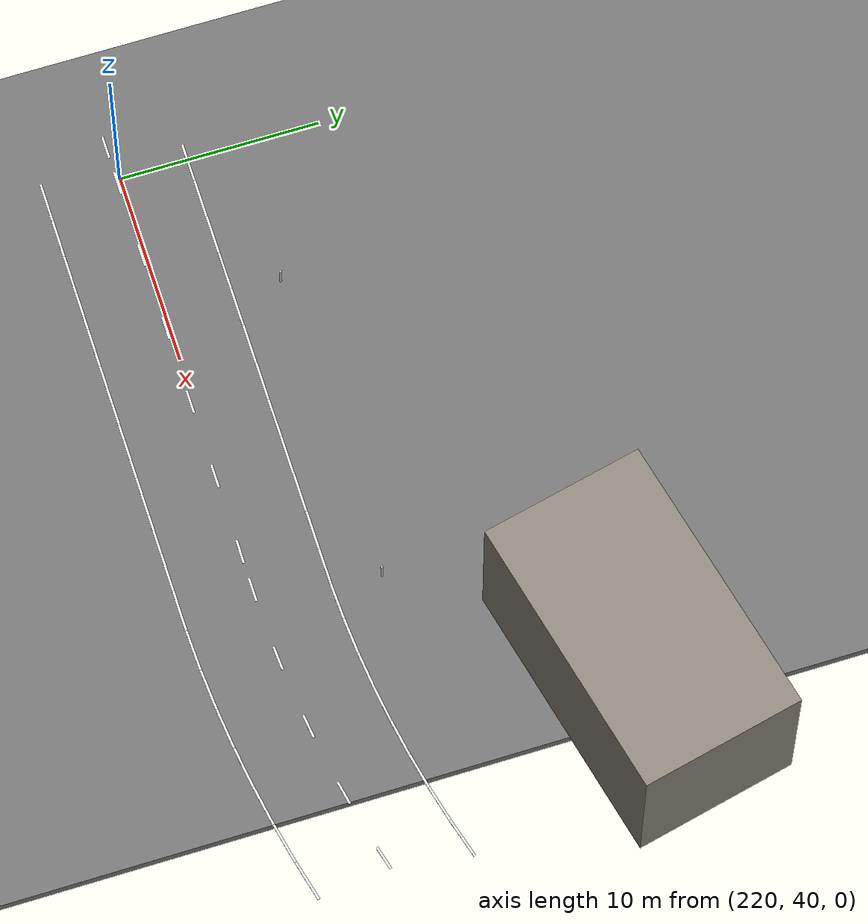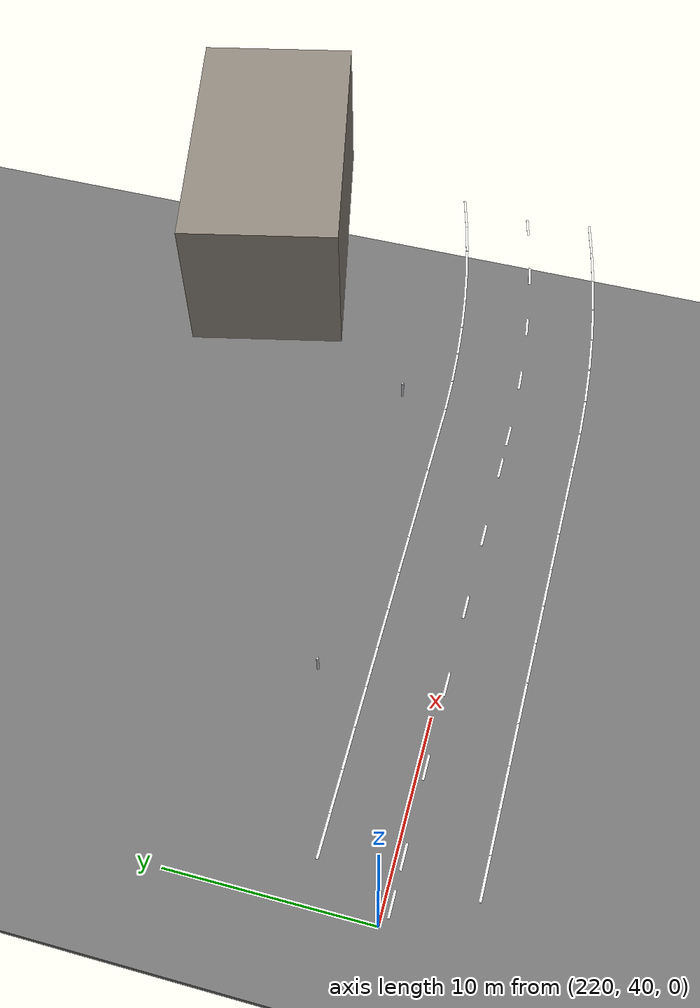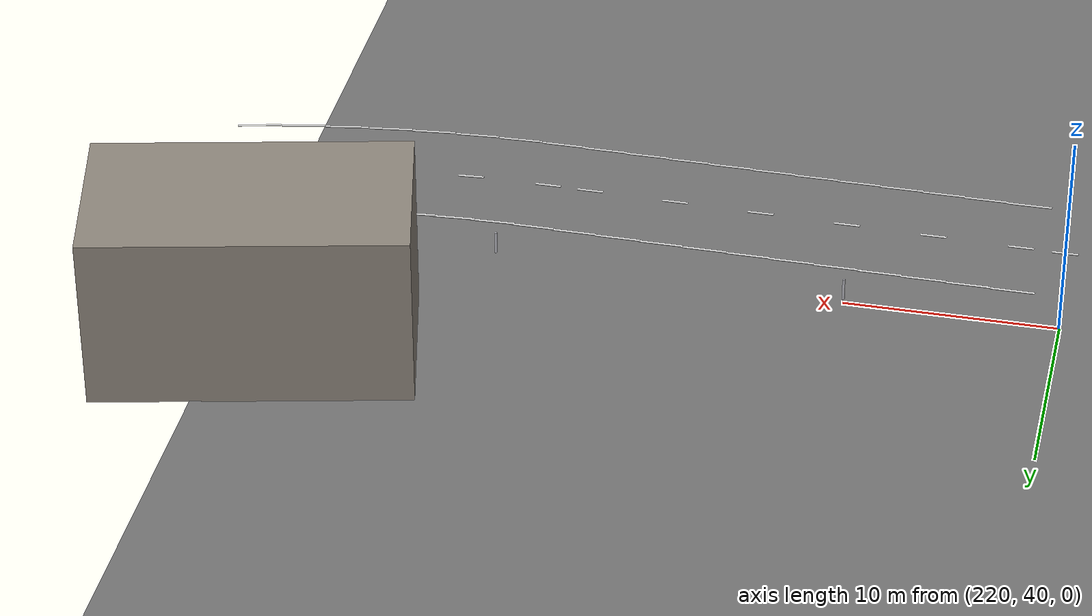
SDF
<sdf version="1.4">
 <world name="marathon_course">
  <include><uri>model://sun</uri></include>
  <model name="road_6">
   <static>true</static>
   <pose>235.20436310160932 37.70038853386919 3.8554693473276775 0 -0.017453292519943295 0</pose>
   <link name="link">
    <collision name="collision">
     <geometry><box><size>40.4 125.40077706773837 0.5</size></box></geometry>
    </collision>
    <visual name="visual">
     <geometry><box><size>40.4 125.40077706773837 0.5</size></box></geometry>
     <material><ambient>0.45 0.45 0.45 1</ambient><diffuse>0.45 0.45 0.45 1</diffuse></material>
    </visual>
   </link>
  </model>
  <model name="paint_left_edge_114">
   <static>true</static>
   <pose>222.05546315108728 42.95038853386919 3.895992526967656 0 0 0.0</pose>
   <link name="link">
    <visual name="visual">
     <geometry><box><size>2.05 0.12 0.02</size></box></geometry>
     <material><ambient>0.95 0.95 0.95 1</ambient><diffuse>0.95 0.95 0.95 1</diffuse></material>
    </visual>
   </link>
  </model>
  <model name="paint_left_edge_115">
   <static>true</static>
   <pose>224.05546315108728 42.95038853386919 3.9309026568240912 0 0 0.0</pose>
   <link name="link">
    <visual name="visual">
     <geometry><box><size>2.05 0.12 0.02</size></box></geometry>
     <material><ambient>0.95 0.95 0.95 1</ambient><diffuse>0.95 0.95 0.95 1</diffuse></material>
    </visual>
   </link>
  </model>
  <model name="paint_left_edge_116">
   <static>true</static>
   <pose>226.05546315108728 42.95038853386919 3.965812786680526 0 0 0.0</pose>
   <link name="link">
    <visual name="visual">
     <geometry><box><size>2.05 0.12 0.02</size></box></geometry>
     <material><ambient>0.95 0.95 0.95 1</ambient><diffuse>0.95 0.95 0.95 1</diffuse></material>
    </visual>
   </link>
  </model>
  <model name="paint_left_edge_117">
   <static>true</static>
   <pose>228.05546315108728 42.95038853386919 4.0007229165369615 0 0 0.0</pose>
   <link name="link">
    <visual name="visual">
     <geometry><box><size>2.05 0.12 0.02</size></box></geometry>
     <material><ambient>0.95 0.95 0.95 1</ambient><diffuse>0.95 0.95 0.95 1</diffuse></material>
    </visual>
   </link>
  </model>
  <model name="paint_left_edge_118">
   <static>true</static>
   <pose>230.05546315108728 42.95038853386919 4.0356330463933965 0 0 0.0</pose>
   <link name="link">
    <visual name="visual">
     <geometry><box><size>2.05 0.12 0.02</size></box></geometry>
     <material><ambient>0.95 0.95 0.95 1</ambient><diffuse>0.95 0.95 0.95 1</diffuse></material>
    </visual>
   </link>
  </model>
  <model name="paint_left_edge_119">
   <static>true</static>
   <pose>232.05546315108728 42.95038853386919 4.070543176249831 0 0 0.0</pose>
   <link name="link">
    <visual name="visual">
     <geometry><box><size>2.05 0.12 0.02</size></box></geometry>
     <material><ambient>0.95 0.95 0.95 1</ambient><diffuse>0.95 0.95 0.95 1</diffuse></material>
    </visual>
   </link>
  </model>
  <model name="paint_left_edge_120">
   <static>true</static>
   <pose>234.05546315108728 42.95038853386919 4.105453306106266 0 0 0.0</pose>
   <link name="link">
    <visual name="visual">
     <geometry><box><size>2.05 0.12 0.02</size></box></geometry>
     <material><ambient>0.95 0.95 0.95 1</ambient><diffuse>0.95 0.95 0.95 1</diffuse></material>
    </visual>
   </link>
  </model>
  <model name="paint_left_edge_121">
   <static>true</static>
   <pose>236.05546315108728 42.95038853386919 4.140363435962702 0 0 0.0</pose>
   <link name="link">
    <visual name="visual">
     <geometry><box><size>2.05 0.12 0.02</size></box></geometry>
     <material><ambient>0.95 0.95 0.95 1</ambient><diffuse>0.95 0.95 0.95 1</diffuse></material>
    </visual>
   </link>
  </model>
  <model name="paint_left_edge_122">
   <static>true</static>
   <pose>238.05546315108728 42.95038853386919 4.175273565819137 0 0 0.0</pose>
   <link name="link">
    <visual name="visual">
     <geometry><box><size>2.05 0.12 0.02</size></box></geometry>
     <material><ambient>0.95 0.95 0.95 1</ambient><diffuse>0.95 0.95 0.95 1</diffuse></material>
    </visual>
   </link>
  </model>
  <model name="paint_left_edge_123">
   <static>true</static>
   <pose>240.05546315108728 42.95038853386919 4.210183695675572 0 0 0.0</pose>
   <link name="link">
    <visual name="visual">
     <geometry><box><size>2.05 0.12 0.02</size></box></geometry>
     <material><ambient>0.95 0.95 0.95 1</ambient><diffuse>0.95 0.95 0.95 1</diffuse></material>
    </visual>
   </link>
  </model>
  <model name="paint_left_edge_124">
   <static>true</static>
   <pose>242.05546315108728 42.95038853386919 4.245093825532007 0 0 0.0</pose>
   <link name="link">
    <visual name="visual">
     <geometry><box><size>2.05 0.12 0.02</size></box></geometry>
     <material><ambient>0.95 0.95 0.95 1</ambient><diffuse>0.95 0.95 0.95 1</diffuse></material>
    </visual>
   </link>
  </model>
  <model name="paint_left_edge_125">
   <static>true</static>
   <pose>244.05546315108728 42.95038853386919 4.280003955388443 0 0 0.0</pose>
   <link name="link">
    <visual name="visual">
     <geometry><box><size>2.05 0.12 0.02</size></box></geometry>
     <material><ambient>0.95 0.95 0.95 1</ambient><diffuse>0.95 0.95 0.95 1</diffuse></material>
    </visual>
   </link>
  </model>
  <model name="paint_left_edge_126">
   <static>true</static>
   <pose>245.89274846024674 42.98122477296412 4.312073889751481 0 0 0.03356402407681403</pose>
   <link name="link">
    <visual name="visual">
     <geometry><box><size>2.05 0.12 0.02</size></box></geometry>
     <material><ambient>0.95 0.95 0.95 1</ambient><diffuse>0.95 0.95 0.95 1</diffuse></material>
    </visual>
   </link>
  </model>
  <model name="paint_left_edge_127">
   <static>true</static>
   <pose>247.72796418149466 43.073698755138714 4.344107699323149 0 0 0.06712804815362806</pose>
   <link name="link">
    <visual name="visual">
     <geometry><box><size>2.05 0.12 0.02</size></box></geometry>
     <material><ambient>0.95 0.95 0.95 1</ambient><diffuse>0.95 0.95 0.95 1</diffuse></material>
    </visual>
   </link>
  </model>
  <model name="paint_left_edge_128">
   <static>true</static>
   <pose>249.55904305818183 43.22770631418934 4.376069300004412 0 0 0.10069207223044209</pose>
   <link name="link">
    <visual name="visual">
     <geometry><box><size>2.05 0.12 0.02</size></box></geometry>
     <material><ambient>0.95 0.95 0.95 1</ambient><diffuse>0.95 0.95 0.95 1</diffuse></material>
    </visual>
   </link>
  </model>
  <model name="paint_left_edge_129">
   <static>true</static>
   <pose>251.38392249355786 43.443073970155694 4.407922689035069 0 0 0.13425609630725613</pose>
   <link name="link">
    <visual name="visual">
     <geometry><box><size>2.05 0.12 0.02</size></box></geometry>
     <material><ambient>0.95 0.95 0.95 1</ambient><diffuse>0.95 0.95 0.95 1</diffuse></material>
    </visual>
   </link>
  </model>
  <model name="paint_left_edge_130">
   <static>true</static>
   <pose>253.20054687415828 43.71955912473523 4.439631985548632 0 0 0.16782012038407015</pose>
   <link name="link">
    <visual name="visual">
     <geometry><box><size>2.05 0.12 0.02</size></box></geometry>
     <material><ambient>0.95 0.95 0.95 1</ambient><diffuse>0.95 0.95 0.95 1</diffuse></material>
    </visual>
   </link>
  </model>
  <model name="paint_left_edge_131">
   <static>true</static>
   <pose>255.0068698853257 44.05685033455504 4.471161470989894 0 0 0.20138414446088418</pose>
   <link name="link">
    <visual name="visual">
     <geometry><box><size>2.05 0.12 0.02</size></box></geometry>
     <material><ambient>0.95 0.95 0.95 1</ambient><diffuse>0.95 0.95 0.95 1</diffuse></material>
    </visual>
   </link>
  </model>
  <model name="paint_left_edge_132">
   <static>true</static>
   <pose>256.8008568162563 44.45456766199354 4.502475629349661 0 0 0.2349481685376982</pose>
   <link name="link">
    <visual name="visual">
     <geometry><box><size>2.05 0.12 0.02</size></box></geometry>
     <material><ambient>0.95 0.95 0.95 1</ambient><diffuse>0.95 0.95 0.95 1</diffuse></material>
    </visual>
   </link>
  </model>
  <model name="paint_left_edge_133">
   <static>true</static>
   <pose>258.58048685197537 44.91226310315665 4.5335391871713435 0 0 0.26851219261451226</pose>
   <link name="link">
    <visual name="visual">
     <geometry><box><size>2.05 0.12 0.02</size></box></geometry>
     <material><ambient>0.95 0.95 0.95 1</ambient><diffuse>0.95 0.95 0.95 1</diffuse></material>
    </visual>
   </link>
  </model>
  <model name="paint_right_edge_114">
   <static>true</static>
   <pose>222.05546315108728 35.95038853386919 3.895992526967656 0 0 0.0</pose>
   <link name="link">
    <visual name="visual">
     <geometry><box><size>2.05 0.12 0.02</size></box></geometry>
     <material><ambient>0.95 0.95 0.95 1</ambient><diffuse>0.95 0.95 0.95 1</diffuse></material>
    </visual>
   </link>
  </model>
  <model name="paint_right_edge_115">
   <static>true</static>
   <pose>224.05546315108728 35.95038853386919 3.9309026568240912 0 0 0.0</pose>
   <link name="link">
    <visual name="visual">
     <geometry><box><size>2.05 0.12 0.02</size></box></geometry>
     <material><ambient>0.95 0.95 0.95 1</ambient><diffuse>0.95 0.95 0.95 1</diffuse></material>
    </visual>
   </link>
  </model>
  <model name="paint_right_edge_116">
   <static>true</static>
   <pose>226.05546315108728 35.95038853386919 3.965812786680526 0 0 0.0</pose>
   <link name="link">
    <visual name="visual">
     <geometry><box><size>2.05 0.12 0.02</size></box></geometry>
     <material><ambient>0.95 0.95 0.95 1</ambient><diffuse>0.95 0.95 0.95 1</diffuse></material>
    </visual>
   </link>
  </model>
  <model name="paint_right_edge_117">
   <static>true</static>
   <pose>228.05546315108728 35.95038853386919 4.0007229165369615 0 0 0.0</pose>
   <link name="link">
    <visual name="visual">
     <geometry><box><size>2.05 0.12 0.02</size></box></geometry>
     <material><ambient>0.95 0.95 0.95 1</ambient><diffuse>0.95 0.95 0.95 1</diffuse></material>
    </visual>
   </link>
  </model>
  <model name="paint_right_edge_118">
   <static>true</static>
   <pose>230.05546315108728 35.95038853386919 4.0356330463933965 0 0 0.0</pose>
   <link name="link">
    <visual name="visual">
     <geometry><box><size>2.05 0.12 0.02</size></box></geometry>
     <material><ambient>0.95 0.95 0.95 1</ambient><diffuse>0.95 0.95 0.95 1</diffuse></material>
    </visual>
   </link>
  </model>
  <model name="paint_right_edge_119">
   <static>true</static>
   <pose>232.05546315108728 35.95038853386919 4.070543176249831 0 0 0.0</pose>
   <link name="link">
    <visual name="visual">
     <geometry><box><size>2.05 0.12 0.02</size></box></geometry>
     <material><ambient>0.95 0.95 0.95 1</ambient><diffuse>0.95 0.95 0.95 1</diffuse></material>
    </visual>
   </link>
  </model>
  <model name="paint_right_edge_120">
   <static>true</static>
   <pose>234.05546315108728 35.95038853386919 4.105453306106266 0 0 0.0</pose>
   <link name="link">
    <visual name="visual">
     <geometry><box><size>2.05 0.12 0.02</size></box></geometry>
     <material><ambient>0.95 0.95 0.95 1</ambient><diffuse>0.95 0.95 0.95 1</diffuse></material>
    </visual>
   </link>
  </model>
  <model name="paint_right_edge_121">
   <static>true</static>
   <pose>236.05546315108728 35.95038853386919 4.140363435962702 0 0 0.0</pose>
   <link name="link">
    <visual name="visual">
     <geometry><box><size>2.05 0.12 0.02</size></box></geometry>
     <material><ambient>0.95 0.95 0.95 1</ambient><diffuse>0.95 0.95 0.95 1</diffuse></material>
    </visual>
   </link>
  </model>
  <model name="paint_right_edge_122">
   <static>true</static>
   <pose>238.05546315108728 35.95038853386919 4.175273565819137 0 0 0.0</pose>
   <link name="link">
    <visual name="visual">
     <geometry><box><size>2.05 0.12 0.02</size></box></geometry>
     <material><ambient>0.95 0.95 0.95 1</ambient><diffuse>0.95 0.95 0.95 1</diffuse></material>
    </visual>
   </link>
  </model>
  <model name="paint_right_edge_123">
   <static>true</static>
   <pose>240.05546315108728 35.95038853386919 4.210183695675572 0 0 0.0</pose>
   <link name="link">
    <visual name="visual">
     <geometry><box><size>2.05 0.12 0.02</size></box></geometry>
     <material><ambient>0.95 0.95 0.95 1</ambient><diffuse>0.95 0.95 0.95 1</diffuse></material>
    </visual>
   </link>
  </model>
  <model name="paint_right_edge_124">
   <static>true</static>
   <pose>242.05546315108728 35.95038853386919 4.245093825532007 0 0 0.0</pose>
   <link name="link">
    <visual name="visual">
     <geometry><box><size>2.05 0.12 0.02</size></box></geometry>
     <material><ambient>0.95 0.95 0.95 1</ambient><diffuse>0.95 0.95 0.95 1</diffuse></material>
    </visual>
   </link>
  </model>
  <model name="paint_right_edge_125">
   <static>true</static>
   <pose>244.05546315108728 35.95038853386919 4.280003955388443 0 0 0.0</pose>
   <link name="link">
    <visual name="visual">
     <geometry><box><size>2.05 0.12 0.02</size></box></geometry>
     <material><ambient>0.95 0.95 0.95 1</ambient><diffuse>0.95 0.95 0.95 1</diffuse></material>
    </visual>
   </link>
  </model>
  <model name="paint_right_edge_126">
   <static>true</static>
   <pose>246.12765251803881 35.98516730581643 4.316174155332144 0 0 0.03356402407681403</pose>
   <link name="link">
    <visual name="visual">
     <geometry><box><size>2.05 0.12 0.02</size></box></geometry>
     <material><ambient>0.95 0.95 0.95 1</ambient><diffuse>0.95 0.95 0.95 1</diffuse></material>
    </visual>
   </link>
  </model>
  <model name="paint_right_edge_127">
   <static>true</static>
   <pose>248.19750769223168 36.08946444552934 4.352303611789687 0 0 0.06712804815362806</pose>
   <link name="link">
    <visual name="visual">
     <geometry><box><size>2.05 0.12 0.02</size></box></geometry>
     <material><ambient>0.95 0.95 0.95 1</ambient><diffuse>0.95 0.95 0.95 1</diffuse></material>
    </visual>
   </link>
  </model>
  <model name="paint_right_edge_128">
   <static>true</static>
   <pose>250.26269711023045 36.26316246875082 4.388351627169923 0 0 0.10069207223044209</pose>
   <link name="link">
    <visual name="visual">
     <geometry><box><size>2.05 0.12 0.02</size></box></geometry>
     <material><ambient>0.95 0.95 0.95 1</ambient><diffuse>0.95 0.95 0.95 1</diffuse></material>
    </visual>
   </link>
  </model>
  <model name="paint_right_edge_129">
   <static>true</static>
   <pose>252.3208944642847 36.50606571543434 4.424277595620026 0 0 0.13425609630725613</pose>
   <link name="link">
    <visual name="visual">
     <geometry><box><size>2.05 0.12 0.02</size></box></geometry>
     <material><ambient>0.95 0.95 0.95 1</ambient><diffuse>0.95 0.95 0.95 1</diffuse></material>
    </visual>
   </link>
  </model>
  <model name="paint_right_edge_130">
   <static>true</static>
   <pose>254.3697813227701 36.817900570142754 4.4600410487654605 0 0 0.16782012038407015</pose>
   <link name="link">
    <visual name="visual">
     <geometry><box><size>2.05 0.12 0.02</size></box></geometry>
     <material><ambient>0.95 0.95 0.95 1</ambient><diffuse>0.95 0.95 0.95 1</diffuse></material>
    </visual>
   </link>
  </model>
  <model name="paint_right_edge_131">
   <static>true</static>
   <pose>256.407049741758 37.198315770259164 4.495601701295102 0 0 0.20138414446088418</pose>
   <link name="link">
    <visual name="visual">
     <geometry><box><size>2.05 0.12 0.02</size></box></geometry>
     <material><ambient>0.95 0.95 0.95 1</ambient><diffuse>0.95 0.95 0.95 1</diffuse></material>
    </visual>
   </link>
  </model>
  <model name="paint_right_edge_132">
   <static>true</static>
   <pose>258.4304048647711 37.64688280166241 4.530919496340137 0 0 0.2349481685376982</pose>
   <link name="link">
    <visual name="visual">
     <geometry><box><size>2.05 0.12 0.02</size></box></geometry>
     <material><ambient>0.95 0.95 0.95 1</ambient><diffuse>0.95 0.95 0.95 1</diffuse></material>
    </visual>
   </link>
  </model>
  <model name="paint_divider_61">
   <static>true</static>
   <pose>220.05546315108728 39.45038853386919 3.861082397111221 0 0 0.0</pose>
   <link name="link">
    <visual name="visual">
     <geometry><box><size>1.2 0.12 0.02</size></box></geometry>
     <material><ambient>0.95 0.95 0.95 1</ambient><diffuse>0.95 0.95 0.95 1</diffuse></material>
    </visual>
   </link>
  </model>
  <model name="paint_divider_62">
   <static>true</static>
   <pose>222.05546315108728 39.45038853386919 3.895992526967656 0 0 0.0</pose>
   <link name="link">
    <visual name="visual">
     <geometry><box><size>1.2 0.12 0.02</size></box></geometry>
     <material><ambient>0.95 0.95 0.95 1</ambient><diffuse>0.95 0.95 0.95 1</diffuse></material>
    </visual>
   </link>
  </model>
  <model name="paint_divider_63">
   <static>true</static>
   <pose>226.05546315108728 39.45038853386919 3.965812786680526 0 0 0.0</pose>
   <link name="link">
    <visual name="visual">
     <geometry><box><size>1.2 0.12 0.02</size></box></geometry>
     <material><ambient>0.95 0.95 0.95 1</ambient><diffuse>0.95 0.95 0.95 1</diffuse></material>
    </visual>
   </link>
  </model>
  <model name="paint_divider_64">
   <static>true</static>
   <pose>230.05546315108728 39.45038853386919 4.0356330463933965 0 0 0.0</pose>
   <link name="link">
    <visual name="visual">
     <geometry><box><size>1.2 0.12 0.02</size></box></geometry>
     <material><ambient>0.95 0.95 0.95 1</ambient><diffuse>0.95 0.95 0.95 1</diffuse></material>
    </visual>
   </link>
  </model>
  <model name="paint_divider_65">
   <static>true</static>
   <pose>234.05546315108728 39.45038853386919 4.105453306106266 0 0 0.0</pose>
   <link name="link">
    <visual name="visual">
     <geometry><box><size>1.2 0.12 0.02</size></box></geometry>
     <material><ambient>0.95 0.95 0.95 1</ambient><diffuse>0.95 0.95 0.95 1</diffuse></material>
    </visual>
   </link>
  </model>
  <model name="paint_divider_66">
   <static>true</static>
   <pose>238.05546315108728 39.45038853386919 4.175273565819137 0 0 0.0</pose>
   <link name="link">
    <visual name="visual">
     <geometry><box><size>1.2 0.12 0.02</size></box></geometry>
     <material><ambient>0.95 0.95 0.95 1</ambient><diffuse>0.95 0.95 0.95 1</diffuse></material>
    </visual>
   </link>
  </model>
  <model name="paint_divider_67">
   <static>true</static>
   <pose>242.05546315108728 39.45038853386919 4.245093825532007 0 0 0.0</pose>
   <link name="link">
    <visual name="visual">
     <geometry><box><size>1.2 0.12 0.02</size></box></geometry>
     <material><ambient>0.95 0.95 0.95 1</ambient><diffuse>0.95 0.95 0.95 1</diffuse></material>
    </visual>
   </link>
  </model>
  <model name="paint_divider_68">
   <static>true</static>
   <pose>244.05546315108728 39.45038853386919 4.280003955388443 0 0 0.0</pose>
   <link name="link">
    <visual name="visual">
     <geometry><box><size>1.2 0.12 0.02</size></box></geometry>
     <material><ambient>0.95 0.95 0.95 1</ambient><diffuse>0.95 0.95 0.95 1</diffuse></material>
    </visual>
   </link>
  </model>
  <model name="paint_divider_69">
   <static>true</static>
   <pose>247.6840205128499 39.56351493825521 4.343340659733771 0 0 0.06233318757122605</pose>
   <link name="link">
    <visual name="visual">
     <geometry><box><size>1.2 0.12 0.02</size></box></geometry>
     <material><ambient>0.95 0.95 0.95 1</ambient><diffuse>0.95 0.95 0.95 1</diffuse></material>
    </visual>
   </link>
  </model>
  <model name="paint_divider_70">
   <static>true</static>
   <pose>251.2984839468033 39.90245474940916 4.406431353654096 0 0 0.1246663751424521</pose>
   <link name="link">
    <visual name="visual">
     <geometry><box><size>1.2 0.12 0.02</size></box></geometry>
     <material><ambient>0.95 0.95 0.95 1</ambient><diffuse>0.95 0.95 0.95 1</diffuse></material>
    </visual>
   </link>
  </model>
  <model name="paint_divider_71">
   <static>true</static>
   <pose>254.88481426832706 40.465891468030144 4.469030982270328 0 0 0.18699956271367815</pose>
   <link name="link">
    <visual name="visual">
     <geometry><box><size>1.2 0.12 0.02</size></box></geometry>
     <material><ambient>0.95 0.95 0.95 1</ambient><diffuse>0.95 0.95 0.95 1</diffuse></material>
    </visual>
   </link>
  </model>
  <model name="paint_divider_72">
   <static>true</static>
   <pose>258.4290815665469 41.2516366110254 4.530896398083715 0 0 0.2493327502849042</pose>
   <link name="link">
    <visual name="visual">
     <geometry><box><size>1.2 0.12 0.02</size></box></geometry>
     <material><ambient>0.95 0.95 0.95 1</ambient><diffuse>0.95 0.95 0.95 1</diffuse></material>
    </visual>
   </link>
  </model>
  <model name="building_6">
   <static>true</static>
   <pose>253.71568626569265 54.77527342648048 8.428623777074948 0 0 0.22136049336157465</pose>
   <link name="link">
    <collision name="collision"><geometry><box><size>14.0 8.0 8.0</size></box></geometry></collision>
    <visual name="visual">
     <geometry><box><size>14.0 8.0 8.0</size></box></geometry>
     <material><ambient>0.55 0.52 0.48 1</ambient><diffuse>0.55 0.52 0.48 1</diffuse></material>
    </visual>
   </link>
  </model>
  <model name="barrier_14">
   <static>true</static>
   <pose>229.33693689566041 45.30038853386919 4.528091123952292 0 0 0.0</pose>
   <link name="link">
    <collision name="collision">
     <geometry><cylinder><radius>0.06</radius><length>1.05</length></cylinder></geometry>
    </collision>
    <visual name="visual">
     <geometry><cylinder><radius>0.06</radius><length>1.05</length></cylinder></geometry>
     <material><ambient>0.75 0.75 0.78 1</ambient><diffuse>0.75 0.75 0.78 1</diffuse></material>
    </visual>
   </link>
  </model>
  <model name="barrier_15">
   <static>true</static>
   <pose>245.1745048878431 45.31401492742133 4.804536901560902 0 0 0.021358146376227228</pose>
   <link name="link">
    <collision name="collision">
     <geometry><cylinder><radius>0.06</radius><length>1.05</length></cylinder></geometry>
    </collision>
    <visual name="visual">
     <geometry><cylinder><radius>0.06</radius><length>1.05</length></cylinder></geometry>
     <material><ambient>0.75 0.75 0.78 1</ambient><diffuse>0.75 0.75 0.78 1</diffuse></material>
    </visual>
   </link>
  </model>
 </world>
</sdf>
